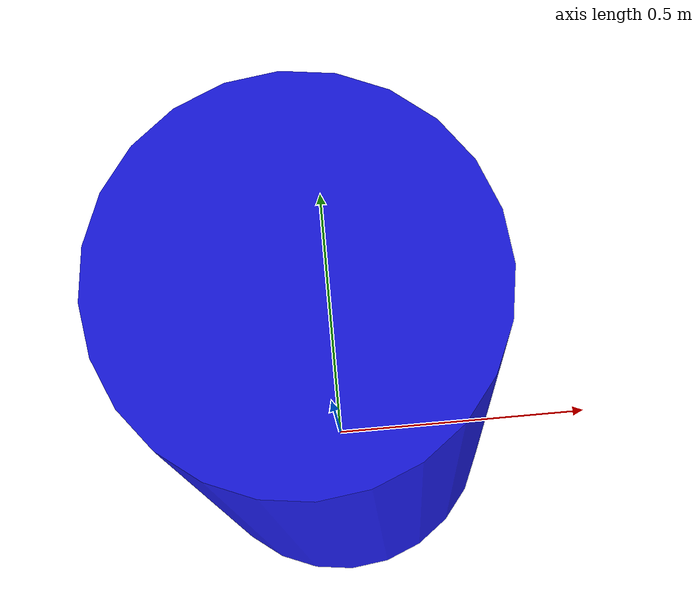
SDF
<?xml version="1.0" ?>
<sdf version="1.6">
  <model name="human_cylinder">
    <static>false</static>
    <link name="body">
      <gravity>false</gravity>

      <collision name="collision">
        <pose>0 0 0.85 0 0 0</pose>
        <geometry>
          <cylinder>
            <radius>0.28</radius>
            <length>1.70</length>
          </cylinder>
        </geometry>
      </collision>

      <visual name="visual">
        <pose>0 0 0.85 0 0 0</pose>
        <geometry>
          <cylinder>
            <radius>0.28</radius>
            <length>1.70</length>
          </cylinder>
        </geometry>
        <material>
          <ambient>0.1 0.1 0.9 1</ambient>
          <diffuse>0.1 0.1 0.9 1</diffuse>
        </material>
      </visual>
    </link>
  </model>
</sdf>
